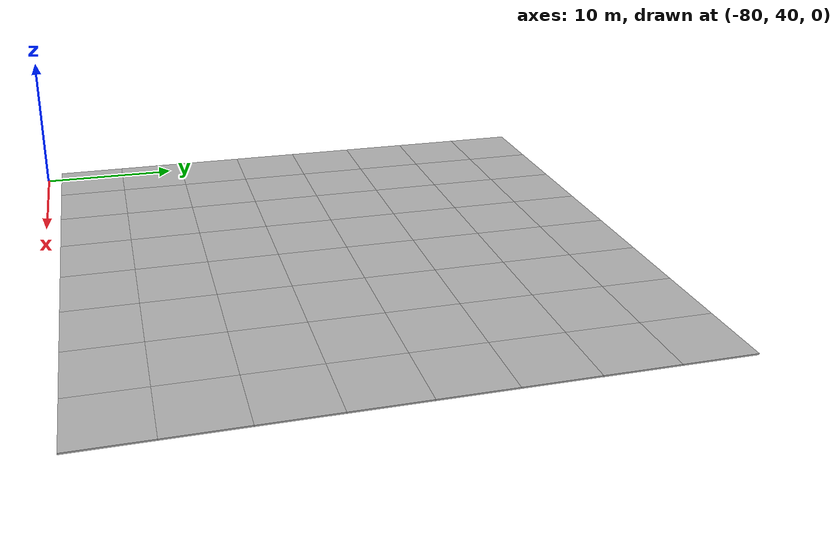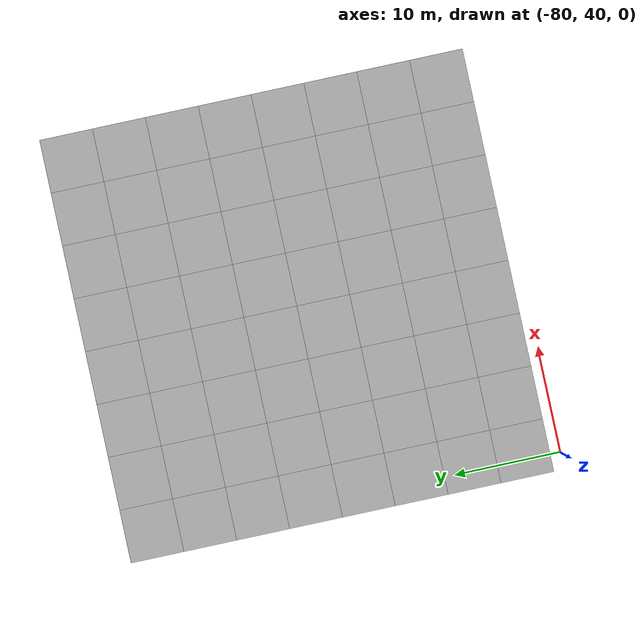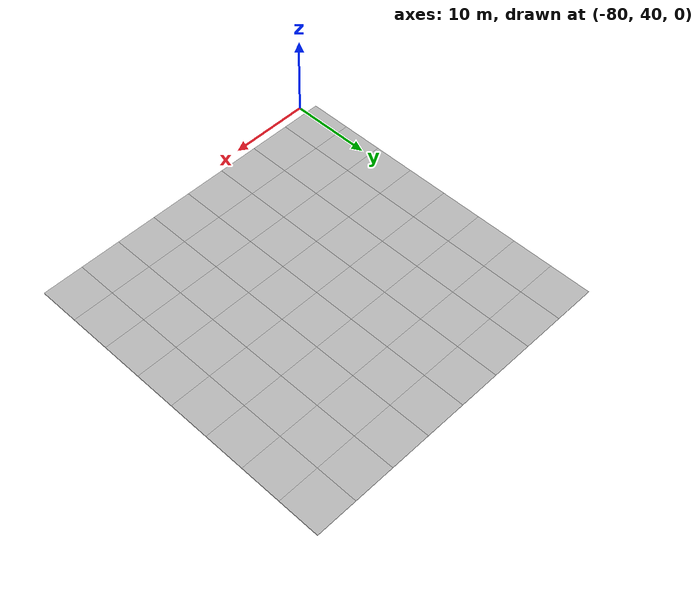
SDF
<sdf version="1.7">
 <world name="default">
  <model name="mud_plane_80x80_1">
   <model name="mud_plane_40x40_1">
    <model name="mud_plane_20x20">
     <model name="mud_plane">
      <static>1</static>
      <link name="link">
       <collision name="collision"><geometry><box><size>10 10 0.1</size></box></geometry></collision>
       <visual name="visual_1">
        <pose>-2.5 2.5 -0.05 0 -0 0</pose>
        <cast_shadows>0</cast_shadows>
        <geometry><box><size>5 5 0.1</size></box></geometry>
        <material>
         <script>
          <uri>model://mud_plane/materials/scripts</uri>
          <uri>model://mud_plane/materials/textures</uri>
          <name>vrc/mud</name>
         </script>
        </material>
       </visual>
       <visual name="visual_2">
        <pose>2.5 2.5 -0.05 0 -0 0</pose>
        <cast_shadows>0</cast_shadows>
        <geometry><box><size>5 5 0.1</size></box></geometry>
        <material>
         <script>
          <uri>model://mud_plane/materials/scripts</uri>
          <uri>model://mud_plane/materials/textures</uri>
          <name>vrc/mud</name>
         </script>
        </material>
       </visual>
       <visual name="visual_3">
        <pose>2.5 -2.5 -0.05 0 -0 0</pose>
        <cast_shadows>0</cast_shadows>
        <geometry><box><size>5 5 0.1</size></box></geometry>
        <material>
         <script>
          <uri>model://mud_plane/materials/scripts</uri>
          <uri>model://mud_plane/materials/textures</uri>
          <name>vrc/mud</name>
         </script>
        </material>
       </visual>
       <visual name="visual_4">
        <pose>-2.5 -2.5 -0.05 0 -0 0</pose>
        <cast_shadows>0</cast_shadows>
        <geometry><box><size>5 5 0.1</size></box></geometry>
        <material>
         <script>
          <uri>model://mud_plane/materials/scripts</uri>
          <uri>model://mud_plane/materials/textures</uri>
          <name>vrc/mud</name>
         </script>
        </material>
       </visual>
      </link>
      <pose>-4.99986 -4.99991 0 0 -0 0</pose>
     </model>
     <model name="mud_plane_0">
      <static>1</static>
      <link name="link">
       <collision name="collision"><geometry><box><size>10 10 0.1</size></box></geometry></collision>
       <visual name="visual_1">
        <pose>-2.5 2.5 -0.05 0 -0 0</pose>
        <cast_shadows>0</cast_shadows>
        <geometry><box><size>5 5 0.1</size></box></geometry>
        <material>
         <script>
          <uri>model://mud_plane/materials/scripts</uri>
          <uri>model://mud_plane/materials/textures</uri>
          <name>vrc/mud</name>
         </script>
        </material>
       </visual>
       <visual name="visual_2">
        <pose>2.5 2.5 -0.05 0 -0 0</pose>
        <cast_shadows>0</cast_shadows>
        <geometry><box><size>5 5 0.1</size></box></geometry>
        <material>
         <script>
          <uri>model://mud_plane/materials/scripts</uri>
          <uri>model://mud_plane/materials/textures</uri>
          <name>vrc/mud</name>
         </script>
        </material>
       </visual>
       <visual name="visual_3">
        <pose>2.5 -2.5 -0.05 0 -0 0</pose>
        <cast_shadows>0</cast_shadows>
        <geometry><box><size>5 5 0.1</size></box></geometry>
        <material>
         <script>
          <uri>model://mud_plane/materials/scripts</uri>
          <uri>model://mud_plane/materials/textures</uri>
          <name>vrc/mud</name>
         </script>
        </material>
       </visual>
       <visual name="visual_4">
        <pose>-2.5 -2.5 -0.05 0 -0 0</pose>
        <cast_shadows>0</cast_shadows>
        <geometry><box><size>5 5 0.1</size></box></geometry>
        <material>
         <script>
          <uri>model://mud_plane/materials/scripts</uri>
          <uri>model://mud_plane/materials/textures</uri>
          <name>vrc/mud</name>
         </script>
        </material>
       </visual>
      </link>
      <pose>-4.99946 4.99954 0 0 -0 0</pose>
     </model>
     <model name="mud_plane_1">
      <static>1</static>
      <link name="link">
       <collision name="collision"><geometry><box><size>10 10 0.1</size></box></geometry></collision>
       <visual name="visual_1">
        <pose>-2.5 2.5 -0.05 0 -0 0</pose>
        <cast_shadows>0</cast_shadows>
        <geometry><box><size>5 5 0.1</size></box></geometry>
        <material>
         <script>
          <uri>model://mud_plane/materials/scripts</uri>
          <uri>model://mud_plane/materials/textures</uri>
          <name>vrc/mud</name>
         </script>
        </material>
       </visual>
       <visual name="visual_2">
        <pose>2.5 2.5 -0.05 0 -0 0</pose>
        <cast_shadows>0</cast_shadows>
        <geometry><box><size>5 5 0.1</size></box></geometry>
        <material>
         <script>
          <uri>model://mud_plane/materials/scripts</uri>
          <uri>model://mud_plane/materials/textures</uri>
          <name>vrc/mud</name>
         </script>
        </material>
       </visual>
       <visual name="visual_3">
        <pose>2.5 -2.5 -0.05 0 -0 0</pose>
        <cast_shadows>0</cast_shadows>
        <geometry><box><size>5 5 0.1</size></box></geometry>
        <material>
         <script>
          <uri>model://mud_plane/materials/scripts</uri>
          <uri>model://mud_plane/materials/textures</uri>
          <name>vrc/mud</name>
         </script>
        </material>
       </visual>
       <visual name="visual_4">
        <pose>-2.5 -2.5 -0.05 0 -0 0</pose>
        <cast_shadows>0</cast_shadows>
        <geometry><box><size>5 5 0.1</size></box></geometry>
        <material>
         <script>
          <uri>model://mud_plane/materials/scripts</uri>
          <uri>model://mud_plane/materials/textures</uri>
          <name>vrc/mud</name>
         </script>
        </material>
       </visual>
      </link>
      <pose>4.99964 -4.99949 0 0 -0 0</pose>
     </model>
     <model name="mud_plane_2">
      <static>1</static>
      <link name="link">
       <collision name="collision"><geometry><box><size>10 10 0.1</size></box></geometry></collision>
       <visual name="visual_1">
        <pose>-2.5 2.5 -0.05 0 -0 0</pose>
        <cast_shadows>0</cast_shadows>
        <geometry><box><size>5 5 0.1</size></box></geometry>
        <material>
         <script>
          <uri>model://mud_plane/materials/scripts</uri>
          <uri>model://mud_plane/materials/textures</uri>
          <name>vrc/mud</name>
         </script>
        </material>
       </visual>
       <visual name="visual_2">
        <pose>2.5 2.5 -0.05 0 -0 0</pose>
        <cast_shadows>0</cast_shadows>
        <geometry><box><size>5 5 0.1</size></box></geometry>
        <material>
         <script>
          <uri>model://mud_plane/materials/scripts</uri>
          <uri>model://mud_plane/materials/textures</uri>
          <name>vrc/mud</name>
         </script>
        </material>
       </visual>
       <visual name="visual_3">
        <pose>2.5 -2.5 -0.05 0 -0 0</pose>
        <cast_shadows>0</cast_shadows>
        <geometry><box><size>5 5 0.1</size></box></geometry>
        <material>
         <script>
          <uri>model://mud_plane/materials/scripts</uri>
          <uri>model://mud_plane/materials/textures</uri>
          <name>vrc/mud</name>
         </script>
        </material>
       </visual>
       <visual name="visual_4">
        <pose>-2.5 -2.5 -0.05 0 -0 0</pose>
        <cast_shadows>0</cast_shadows>
        <geometry><box><size>5 5 0.1</size></box></geometry>
        <material>
         <script>
          <uri>model://mud_plane/materials/scripts</uri>
          <uri>model://mud_plane/materials/textures</uri>
          <name>vrc/mud</name>
         </script>
        </material>
       </visual>
      </link>
      <pose>4.99967 4.99986 0 0 -0 0</pose>
     </model>
     <static>0</static>
     <pose>-9.99895 9.99843 0 0 -0 0</pose>
    </model>
    <model name="mud_plane_20x20_0">
     <model name="mud_plane">
      <static>1</static>
      <link name="link">
       <collision name="collision"><geometry><box><size>10 10 0.1</size></box></geometry></collision>
       <visual name="visual_1">
        <pose>-2.5 2.5 -0.05 0 -0 0</pose>
        <cast_shadows>0</cast_shadows>
        <geometry><box><size>5 5 0.1</size></box></geometry>
        <material>
         <script>
          <uri>model://mud_plane/materials/scripts</uri>
          <uri>model://mud_plane/materials/textures</uri>
          <name>vrc/mud</name>
         </script>
        </material>
       </visual>
       <visual name="visual_2">
        <pose>2.5 2.5 -0.05 0 -0 0</pose>
        <cast_shadows>0</cast_shadows>
        <geometry><box><size>5 5 0.1</size></box></geometry>
        <material>
         <script>
          <uri>model://mud_plane/materials/scripts</uri>
          <uri>model://mud_plane/materials/textures</uri>
          <name>vrc/mud</name>
         </script>
        </material>
       </visual>
       <visual name="visual_3">
        <pose>2.5 -2.5 -0.05 0 -0 0</pose>
        <cast_shadows>0</cast_shadows>
        <geometry><box><size>5 5 0.1</size></box></geometry>
        <material>
         <script>
          <uri>model://mud_plane/materials/scripts</uri>
          <uri>model://mud_plane/materials/textures</uri>
          <name>vrc/mud</name>
         </script>
        </material>
       </visual>
       <visual name="visual_4">
        <pose>-2.5 -2.5 -0.05 0 -0 0</pose>
        <cast_shadows>0</cast_shadows>
        <geometry><box><size>5 5 0.1</size></box></geometry>
        <material>
         <script>
          <uri>model://mud_plane/materials/scripts</uri>
          <uri>model://mud_plane/materials/textures</uri>
          <name>vrc/mud</name>
         </script>
        </material>
       </visual>
      </link>
      <pose>-4.99986 -4.99991 0 0 -0 0</pose>
     </model>
     <model name="mud_plane_0">
      <static>1</static>
      <link name="link">
       <collision name="collision"><geometry><box><size>10 10 0.1</size></box></geometry></collision>
       <visual name="visual_1">
        <pose>-2.5 2.5 -0.05 0 -0 0</pose>
        <cast_shadows>0</cast_shadows>
        <geometry><box><size>5 5 0.1</size></box></geometry>
        <material>
         <script>
          <uri>model://mud_plane/materials/scripts</uri>
          <uri>model://mud_plane/materials/textures</uri>
          <name>vrc/mud</name>
         </script>
        </material>
       </visual>
       <visual name="visual_2">
        <pose>2.5 2.5 -0.05 0 -0 0</pose>
        <cast_shadows>0</cast_shadows>
        <geometry><box><size>5 5 0.1</size></box></geometry>
        <material>
         <script>
          <uri>model://mud_plane/materials/scripts</uri>
          <uri>model://mud_plane/materials/textures</uri>
          <name>vrc/mud</name>
         </script>
        </material>
       </visual>
       <visual name="visual_3">
        <pose>2.5 -2.5 -0.05 0 -0 0</pose>
        <cast_shadows>0</cast_shadows>
        <geometry><box><size>5 5 0.1</size></box></geometry>
        <material>
         <script>
          <uri>model://mud_plane/materials/scripts</uri>
          <uri>model://mud_plane/materials/textures</uri>
          <name>vrc/mud</name>
         </script>
        </material>
       </visual>
       <visual name="visual_4">
        <pose>-2.5 -2.5 -0.05 0 -0 0</pose>
        <cast_shadows>0</cast_shadows>
        <geometry><box><size>5 5 0.1</size></box></geometry>
        <material>
         <script>
          <uri>model://mud_plane/materials/scripts</uri>
          <uri>model://mud_plane/materials/textures</uri>
          <name>vrc/mud</name>
         </script>
        </material>
       </visual>
      </link>
      <pose>-4.99946 4.99954 0 0 -0 0</pose>
     </model>
     <model name="mud_plane_1">
      <static>1</static>
      <link name="link">
       <collision name="collision"><geometry><box><size>10 10 0.1</size></box></geometry></collision>
       <visual name="visual_1">
        <pose>-2.5 2.5 -0.05 0 -0 0</pose>
        <cast_shadows>0</cast_shadows>
        <geometry><box><size>5 5 0.1</size></box></geometry>
        <material>
         <script>
          <uri>model://mud_plane/materials/scripts</uri>
          <uri>model://mud_plane/materials/textures</uri>
          <name>vrc/mud</name>
         </script>
        </material>
       </visual>
       <visual name="visual_2">
        <pose>2.5 2.5 -0.05 0 -0 0</pose>
        <cast_shadows>0</cast_shadows>
        <geometry><box><size>5 5 0.1</size></box></geometry>
        <material>
         <script>
          <uri>model://mud_plane/materials/scripts</uri>
          <uri>model://mud_plane/materials/textures</uri>
          <name>vrc/mud</name>
         </script>
        </material>
       </visual>
       <visual name="visual_3">
        <pose>2.5 -2.5 -0.05 0 -0 0</pose>
        <cast_shadows>0</cast_shadows>
        <geometry><box><size>5 5 0.1</size></box></geometry>
        <material>
         <script>
          <uri>model://mud_plane/materials/scripts</uri>
          <uri>model://mud_plane/materials/textures</uri>
          <name>vrc/mud</name>
         </script>
        </material>
       </visual>
       <visual name="visual_4">
        <pose>-2.5 -2.5 -0.05 0 -0 0</pose>
        <cast_shadows>0</cast_shadows>
        <geometry><box><size>5 5 0.1</size></box></geometry>
        <material>
         <script>
          <uri>model://mud_plane/materials/scripts</uri>
          <uri>model://mud_plane/materials/textures</uri>
          <name>vrc/mud</name>
         </script>
        </material>
       </visual>
      </link>
      <pose>4.99964 -4.99949 0 0 -0 0</pose>
     </model>
     <model name="mud_plane_2">
      <static>1</static>
      <link name="link">
       <collision name="collision"><geometry><box><size>10 10 0.1</size></box></geometry></collision>
       <visual name="visual_1">
        <pose>-2.5 2.5 -0.05 0 -0 0</pose>
        <cast_shadows>0</cast_shadows>
        <geometry><box><size>5 5 0.1</size></box></geometry>
        <material>
         <script>
          <uri>model://mud_plane/materials/scripts</uri>
          <uri>model://mud_plane/materials/textures</uri>
          <name>vrc/mud</name>
         </script>
        </material>
       </visual>
       <visual name="visual_2">
        <pose>2.5 2.5 -0.05 0 -0 0</pose>
        <cast_shadows>0</cast_shadows>
        <geometry><box><size>5 5 0.1</size></box></geometry>
        <material>
         <script>
          <uri>model://mud_plane/materials/scripts</uri>
          <uri>model://mud_plane/materials/textures</uri>
          <name>vrc/mud</name>
         </script>
        </material>
       </visual>
       <visual name="visual_3">
        <pose>2.5 -2.5 -0.05 0 -0 0</pose>
        <cast_shadows>0</cast_shadows>
        <geometry><box><size>5 5 0.1</size></box></geometry>
        <material>
         <script>
          <uri>model://mud_plane/materials/scripts</uri>
          <uri>model://mud_plane/materials/textures</uri>
          <name>vrc/mud</name>
         </script>
        </material>
       </visual>
       <visual name="visual_4">
        <pose>-2.5 -2.5 -0.05 0 -0 0</pose>
        <cast_shadows>0</cast_shadows>
        <geometry><box><size>5 5 0.1</size></box></geometry>
        <material>
         <script>
          <uri>model://mud_plane/materials/scripts</uri>
          <uri>model://mud_plane/materials/textures</uri>
          <name>vrc/mud</name>
         </script>
        </material>
       </visual>
      </link>
      <pose>4.99967 4.99986 0 0 -0 0</pose>
     </model>
     <static>0</static>
     <pose>9.99933 9.9997 0 0 -0 0</pose>
    </model>
    <model name="mud_plane_20x20_1">
     <model name="mud_plane">
      <static>1</static>
      <link name="link">
       <collision name="collision"><geometry><box><size>10 10 0.1</size></box></geometry></collision>
       <visual name="visual_1">
        <pose>-2.5 2.5 -0.05 0 -0 0</pose>
        <cast_shadows>0</cast_shadows>
        <geometry><box><size>5 5 0.1</size></box></geometry>
        <material>
         <script>
          <uri>model://mud_plane/materials/scripts</uri>
          <uri>model://mud_plane/materials/textures</uri>
          <name>vrc/mud</name>
         </script>
        </material>
       </visual>
       <visual name="visual_2">
        <pose>2.5 2.5 -0.05 0 -0 0</pose>
        <cast_shadows>0</cast_shadows>
        <geometry><box><size>5 5 0.1</size></box></geometry>
        <material>
         <script>
          <uri>model://mud_plane/materials/scripts</uri>
          <uri>model://mud_plane/materials/textures</uri>
          <name>vrc/mud</name>
         </script>
        </material>
       </visual>
       <visual name="visual_3">
        <pose>2.5 -2.5 -0.05 0 -0 0</pose>
        <cast_shadows>0</cast_shadows>
        <geometry><box><size>5 5 0.1</size></box></geometry>
        <material>
         <script>
          <uri>model://mud_plane/materials/scripts</uri>
          <uri>model://mud_plane/materials/textures</uri>
          <name>vrc/mud</name>
         </script>
        </material>
       </visual>
       <visual name="visual_4">
        <pose>-2.5 -2.5 -0.05 0 -0 0</pose>
        <cast_shadows>0</cast_shadows>
        <geometry><box><size>5 5 0.1</size></box></geometry>
        <material>
         <script>
          <uri>model://mud_plane/materials/scripts</uri>
          <uri>model://mud_plane/materials/textures</uri>
          <name>vrc/mud</name>
         </script>
        </material>
       </visual>
      </link>
      <pose>-4.99986 -4.99991 0 0 -0 0</pose>
     </model>
     <model name="mud_plane_0">
      <static>1</static>
      <link name="link">
       <collision name="collision"><geometry><box><size>10 10 0.1</size></box></geometry></collision>
       <visual name="visual_1">
        <pose>-2.5 2.5 -0.05 0 -0 0</pose>
        <cast_shadows>0</cast_shadows>
        <geometry><box><size>5 5 0.1</size></box></geometry>
        <material>
         <script>
          <uri>model://mud_plane/materials/scripts</uri>
          <uri>model://mud_plane/materials/textures</uri>
          <name>vrc/mud</name>
         </script>
        </material>
       </visual>
       <visual name="visual_2">
        <pose>2.5 2.5 -0.05 0 -0 0</pose>
        <cast_shadows>0</cast_shadows>
        <geometry><box><size>5 5 0.1</size></box></geometry>
        <material>
         <script>
          <uri>model://mud_plane/materials/scripts</uri>
          <uri>model://mud_plane/materials/textures</uri>
          <name>vrc/mud</name>
         </script>
        </material>
       </visual>
       <visual name="visual_3">
        <pose>2.5 -2.5 -0.05 0 -0 0</pose>
        <cast_shadows>0</cast_shadows>
        <geometry><box><size>5 5 0.1</size></box></geometry>
        <material>
         <script>
          <uri>model://mud_plane/materials/scripts</uri>
          <uri>model://mud_plane/materials/textures</uri>
          <name>vrc/mud</name>
         </script>
        </material>
       </visual>
       <visual name="visual_4">
        <pose>-2.5 -2.5 -0.05 0 -0 0</pose>
        <cast_shadows>0</cast_shadows>
        <geometry><box><size>5 5 0.1</size></box></geometry>
        <material>
         <script>
          <uri>model://mud_plane/materials/scripts</uri>
          <uri>model://mud_plane/materials/textures</uri>
          <name>vrc/mud</name>
         </script>
        </material>
       </visual>
      </link>
      <pose>-4.99946 4.99954 0 0 -0 0</pose>
     </model>
     <model name="mud_plane_1">
      <static>1</static>
      <link name="link">
       <collision name="collision"><geometry><box><size>10 10 0.1</size></box></geometry></collision>
       <visual name="visual_1">
        <pose>-2.5 2.5 -0.05 0 -0 0</pose>
        <cast_shadows>0</cast_shadows>
        <geometry><box><size>5 5 0.1</size></box></geometry>
        <material>
         <script>
          <uri>model://mud_plane/materials/scripts</uri>
          <uri>model://mud_plane/materials/textures</uri>
          <name>vrc/mud</name>
         </script>
        </material>
       </visual>
       <visual name="visual_2">
        <pose>2.5 2.5 -0.05 0 -0 0</pose>
        <cast_shadows>0</cast_shadows>
        <geometry><box><size>5 5 0.1</size></box></geometry>
        <material>
         <script>
          <uri>model://mud_plane/materials/scripts</uri>
          <uri>model://mud_plane/materials/textures</uri>
          <name>vrc/mud</name>
         </script>
        </material>
       </visual>
       <visual name="visual_3">
        <pose>2.5 -2.5 -0.05 0 -0 0</pose>
        <cast_shadows>0</cast_shadows>
        <geometry><box><size>5 5 0.1</size></box></geometry>
        <material>
         <script>
          <uri>model://mud_plane/materials/scripts</uri>
          <uri>model://mud_plane/materials/textures</uri>
          <name>vrc/mud</name>
         </script>
        </material>
       </visual>
       <visual name="visual_4">
        <pose>-2.5 -2.5 -0.05 0 -0 0</pose>
        <cast_shadows>0</cast_shadows>
        <geometry><box><size>5 5 0.1</size></box></geometry>
        <material>
         <script>
          <uri>model://mud_plane/materials/scripts</uri>
          <uri>model://mud_plane/materials/textures</uri>
          <name>vrc/mud</name>
         </script>
        </material>
       </visual>
      </link>
      <pose>4.99964 -4.99949 0 0 -0 0</pose>
     </model>
     <model name="mud_plane_2">
      <static>1</static>
      <link name="link">
       <collision name="collision"><geometry><box><size>10 10 0.1</size></box></geometry></collision>
       <visual name="visual_1">
        <pose>-2.5 2.5 -0.05 0 -0 0</pose>
        <cast_shadows>0</cast_shadows>
        <geometry><box><size>5 5 0.1</size></box></geometry>
        <material>
         <script>
          <uri>model://mud_plane/materials/scripts</uri>
          <uri>model://mud_plane/materials/textures</uri>
          <name>vrc/mud</name>
         </script>
        </material>
       </visual>
       <visual name="visual_2">
        <pose>2.5 2.5 -0.05 0 -0 0</pose>
        <cast_shadows>0</cast_shadows>
        <geometry><box><size>5 5 0.1</size></box></geometry>
        <material>
         <script>
          <uri>model://mud_plane/materials/scripts</uri>
          <uri>model://mud_plane/materials/textures</uri>
          <name>vrc/mud</name>
         </script>
        </material>
       </visual>
       <visual name="visual_3">
        <pose>2.5 -2.5 -0.05 0 -0 0</pose>
        <cast_shadows>0</cast_shadows>
        <geometry><box><size>5 5 0.1</size></box></geometry>
        <material>
         <script>
          <uri>model://mud_plane/materials/scripts</uri>
          <uri>model://mud_plane/materials/textures</uri>
          <name>vrc/mud</name>
         </script>
        </material>
       </visual>
       <visual name="visual_4">
        <pose>-2.5 -2.5 -0.05 0 -0 0</pose>
        <cast_shadows>0</cast_shadows>
        <geometry><box><size>5 5 0.1</size></box></geometry>
        <material>
         <script>
          <uri>model://mud_plane/materials/scripts</uri>
          <uri>model://mud_plane/materials/textures</uri>
          <name>vrc/mud</name>
         </script>
        </material>
       </visual>
      </link>
      <pose>4.99967 4.99986 0 0 -0 0</pose>
     </model>
     <static>0</static>
     <pose>9.9993 -9.99877 0 0 -0 0</pose>
    </model>
    <model name="mud_plane_20x20_2">
     <model name="mud_plane">
      <static>1</static>
      <link name="link">
       <collision name="collision"><geometry><box><size>10 10 0.1</size></box></geometry></collision>
       <visual name="visual_1">
        <pose>-2.5 2.5 -0.05 0 -0 0</pose>
        <cast_shadows>0</cast_shadows>
        <geometry><box><size>5 5 0.1</size></box></geometry>
        <material>
         <script>
          <uri>model://mud_plane/materials/scripts</uri>
          <uri>model://mud_plane/materials/textures</uri>
          <name>vrc/mud</name>
         </script>
        </material>
       </visual>
       <visual name="visual_2">
        <pose>2.5 2.5 -0.05 0 -0 0</pose>
        <cast_shadows>0</cast_shadows>
        <geometry><box><size>5 5 0.1</size></box></geometry>
        <material>
         <script>
          <uri>model://mud_plane/materials/scripts</uri>
          <uri>model://mud_plane/materials/textures</uri>
          <name>vrc/mud</name>
         </script>
        </material>
       </visual>
       <visual name="visual_3">
        <pose>2.5 -2.5 -0.05 0 -0 0</pose>
        <cast_shadows>0</cast_shadows>
        <geometry><box><size>5 5 0.1</size></box></geometry>
        <material>
         <script>
          <uri>model://mud_plane/materials/scripts</uri>
          <uri>model://mud_plane/materials/textures</uri>
          <name>vrc/mud</name>
         </script>
        </material>
       </visual>
       <visual name="visual_4">
        <pose>-2.5 -2.5 -0.05 0 -0 0</pose>
        <cast_shadows>0</cast_shadows>
        <geometry><box><size>5 5 0.1</size></box></geometry>
        <material>
         <script>
          <uri>model://mud_plane/materials/scripts</uri>
          <uri>model://mud_plane/materials/textures</uri>
          <name>vrc/mud</name>
         </script>
        </material>
       </visual>
      </link>
      <pose>-4.99986 -4.99991 0 0 -0 0</pose>
     </model>
     <model name="mud_plane_0">
      <static>1</static>
      <link name="link">
       <collision name="collision"><geometry><box><size>10 10 0.1</size></box></geometry></collision>
       <visual name="visual_1">
        <pose>-2.5 2.5 -0.05 0 -0 0</pose>
        <cast_shadows>0</cast_shadows>
        <geometry><box><size>5 5 0.1</size></box></geometry>
        <material>
         <script>
          <uri>model://mud_plane/materials/scripts</uri>
          <uri>model://mud_plane/materials/textures</uri>
          <name>vrc/mud</name>
         </script>
        </material>
       </visual>
       <visual name="visual_2">
        <pose>2.5 2.5 -0.05 0 -0 0</pose>
        <cast_shadows>0</cast_shadows>
        <geometry><box><size>5 5 0.1</size></box></geometry>
        <material>
         <script>
          <uri>model://mud_plane/materials/scripts</uri>
          <uri>model://mud_plane/materials/textures</uri>
          <name>vrc/mud</name>
         </script>
        </material>
       </visual>
       <visual name="visual_3">
        <pose>2.5 -2.5 -0.05 0 -0 0</pose>
        <cast_shadows>0</cast_shadows>
        <geometry><box><size>5 5 0.1</size></box></geometry>
        <material>
         <script>
          <uri>model://mud_plane/materials/scripts</uri>
          <uri>model://mud_plane/materials/textures</uri>
          <name>vrc/mud</name>
         </script>
        </material>
       </visual>
       <visual name="visual_4">
        <pose>-2.5 -2.5 -0.05 0 -0 0</pose>
        <cast_shadows>0</cast_shadows>
        <geometry><box><size>5 5 0.1</size></box></geometry>
        <material>
         <script>
          <uri>model://mud_plane/materials/scripts</uri>
          <uri>model://mud_plane/materials/textures</uri>
          <name>vrc/mud</name>
         </script>
        </material>
       </visual>
      </link>
      <pose>-4.99946 4.99954 0 0 -0 0</pose>
     </model>
     <model name="mud_plane_1">
      <static>1</static>
      <link name="link">
       <collision name="collision"><geometry><box><size>10 10 0.1</size></box></geometry></collision>
       <visual name="visual_1">
        <pose>-2.5 2.5 -0.05 0 -0 0</pose>
        <cast_shadows>0</cast_shadows>
        <geometry><box><size>5 5 0.1</size></box></geometry>
        <material>
         <script>
          <uri>model://mud_plane/materials/scripts</uri>
          <uri>model://mud_plane/materials/textures</uri>
          <name>vrc/mud</name>
         </script>
        </material>
       </visual>
       <visual name="visual_2">
        <pose>2.5 2.5 -0.05 0 -0 0</pose>
        <cast_shadows>0</cast_shadows>
        <geometry><box><size>5 5 0.1</size></box></geometry>
        <material>
         <script>
          <uri>model://mud_plane/materials/scripts</uri>
          <uri>model://mud_plane/materials/textures</uri>
          <name>vrc/mud</name>
         </script>
        </material>
       </visual>
       <visual name="visual_3">
        <pose>2.5 -2.5 -0.05 0 -0 0</pose>
        <cast_shadows>0</cast_shadows>
        <geometry><box><size>5 5 0.1</size></box></geometry>
        <material>
         <script>
          <uri>model://mud_plane/materials/scripts</uri>
          <uri>model://mud_plane/materials/textures</uri>
          <name>vrc/mud</name>
         </script>
        </material>
       </visual>
       <visual name="visual_4">
        <pose>-2.5 -2.5 -0.05 0 -0 0</pose>
        <cast_shadows>0</cast_shadows>
        <geometry><box><size>5 5 0.1</size></box></geometry>
        <material>
         <script>
          <uri>model://mud_plane/materials/scripts</uri>
          <uri>model://mud_plane/materials/textures</uri>
          <name>vrc/mud</name>
         </script>
        </material>
       </visual>
      </link>
      <pose>4.99964 -4.99949 0 0 -0 0</pose>
     </model>
     <model name="mud_plane_2">
      <static>1</static>
      <link name="link">
       <collision name="collision"><geometry><box><size>10 10 0.1</size></box></geometry></collision>
       <visual name="visual_1">
        <pose>-2.5 2.5 -0.05 0 -0 0</pose>
        <cast_shadows>0</cast_shadows>
        <geometry><box><size>5 5 0.1</size></box></geometry>
        <material>
         <script>
          <uri>model://mud_plane/materials/scripts</uri>
          <uri>model://mud_plane/materials/textures</uri>
          <name>vrc/mud</name>
         </script>
        </material>
       </visual>
       <visual name="visual_2">
        <pose>2.5 2.5 -0.05 0 -0 0</pose>
        <cast_shadows>0</cast_shadows>
        <geometry><box><size>5 5 0.1</size></box></geometry>
        <material>
         <script>
          <uri>model://mud_plane/materials/scripts</uri>
          <uri>model://mud_plane/materials/textures</uri>
          <name>vrc/mud</name>
         </script>
        </material>
       </visual>
       <visual name="visual_3">
        <pose>2.5 -2.5 -0.05 0 -0 0</pose>
        <cast_shadows>0</cast_shadows>
        <geometry><box><size>5 5 0.1</size></box></geometry>
        <material>
         <script>
          <uri>model://mud_plane/materials/scripts</uri>
          <uri>model://mud_plane/materials/textures</uri>
          <name>vrc/mud</name>
         </script>
        </material>
       </visual>
       <visual name="visual_4">
        <pose>-2.5 -2.5 -0.05 0 -0 0</pose>
        <cast_shadows>0</cast_shadows>
        <geometry><box><size>5 5 0.1</size></box></geometry>
        <material>
         <script>
          <uri>model://mud_plane/materials/scripts</uri>
          <uri>model://mud_plane/materials/textures</uri>
          <name>vrc/mud</name>
         </script>
        </material>
       </visual>
      </link>
      <pose>4.99967 4.99986 0 0 -0 0</pose>
     </model>
     <static>0</static>
     <pose>-9.99969 -9.99935 0 0 -0 0</pose>
    </model>
    <static>0</static>
    <pose>-19.9982 19.9977 0 0 -0 0</pose>
   </model>
   <static>0</static>
   <pose>-41.5873 41.0041 0 0 -0 0</pose>
  </model>
 </world>
</sdf>
